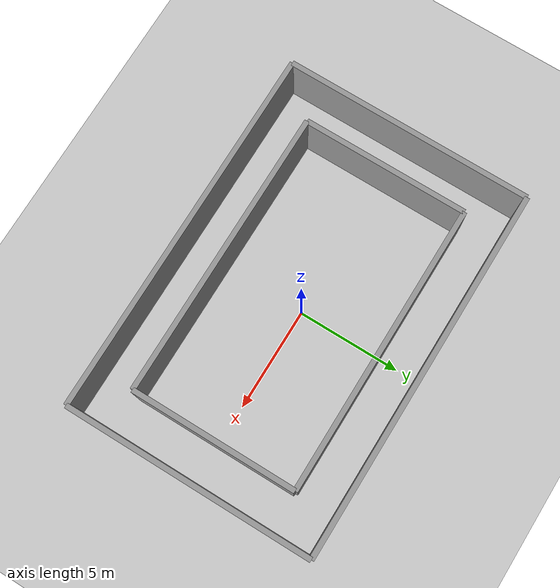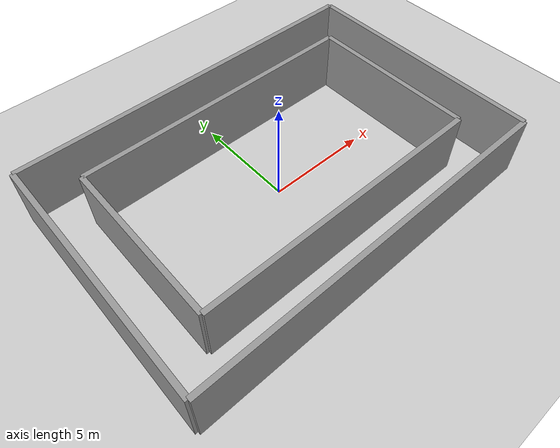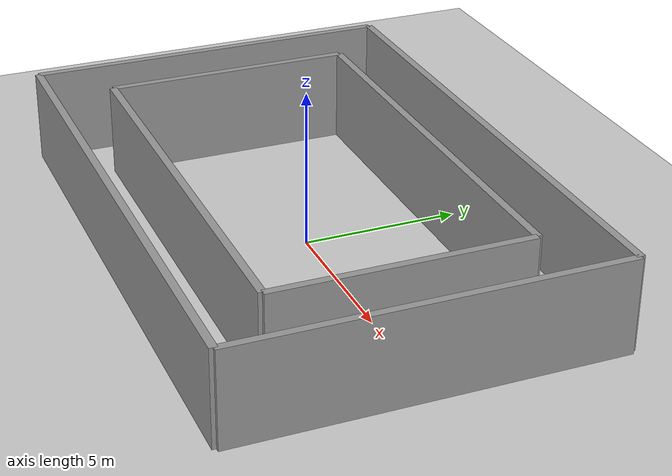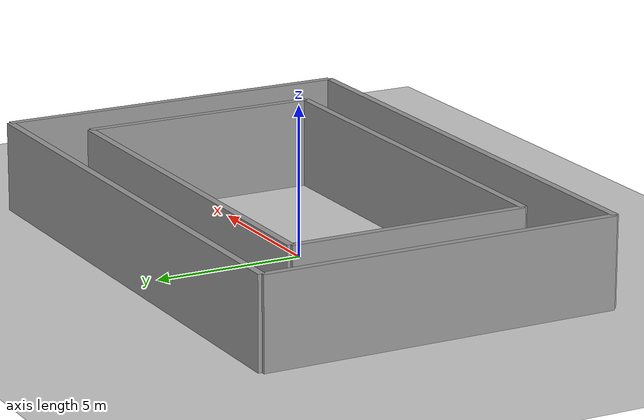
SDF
<?xml version="1.0"?>
<sdf version="1.6">
  <world name="corridor_world">

    <!-- ── Physics ─────────────────────────────────────────────────────── -->
    <physics type="ode">
      <max_step_size>0.001</max_step_size>
      <real_time_factor>1.0</real_time_factor>
      <real_time_update_rate>1000</real_time_update_rate>
    </physics>

    <!-- ── Sun directional light ───────────────────────────────────────── -->
    <light name="sun" type="directional">
      <cast_shadows>true</cast_shadows>
      <pose>0 0 10 0 0 0</pose>
      <diffuse>0.8 0.8 0.8 1</diffuse>
      <specular>0.2 0.2 0.2 1</specular>
      <direction>-0.5 0.1 -0.9</direction>
    </light>

    <!-- ── 6 overhead point lights evenly spaced around the loop ───────── -->
    <light name="light_1" type="point">
      <pose>7.0 0 2.8 0 0 0</pose>
      <diffuse>0.9 0.9 0.85 1</diffuse>
      <specular>0.1 0.1 0.1 1</specular>
      <attenuation>
        <range>15</range>
        <constant>0.3</constant>
        <linear>0.05</linear>
        <quadratic>0.01</quadratic>
      </attenuation>
    </light>

    <light name="light_2" type="point">
      <pose>-7.0 0 2.8 0 0 0</pose>
      <diffuse>0.9 0.9 0.85 1</diffuse>
      <specular>0.1 0.1 0.1 1</specular>
      <attenuation>
        <range>15</range>
        <constant>0.3</constant>
        <linear>0.05</linear>
        <quadratic>0.01</quadratic>
      </attenuation>
    </light>

    <light name="light_3" type="point">
      <pose>0 4.0 2.8 0 0 0</pose>
      <diffuse>0.9 0.9 0.85 1</diffuse>
      <specular>0.1 0.1 0.1 1</specular>
      <attenuation>
        <range>15</range>
        <constant>0.3</constant>
        <linear>0.05</linear>
        <quadratic>0.01</quadratic>
      </attenuation>
    </light>

    <light name="light_4" type="point">
      <pose>0 -4.0 2.8 0 0 0</pose>
      <diffuse>0.9 0.9 0.85 1</diffuse>
      <specular>0.1 0.1 0.1 1</specular>
      <attenuation>
        <range>15</range>
        <constant>0.3</constant>
        <linear>0.05</linear>
        <quadratic>0.01</quadratic>
      </attenuation>
    </light>

    <light name="light_5" type="point">
      <pose>5.0 4.0 2.8 0 0 0</pose>
      <diffuse>0.9 0.9 0.85 1</diffuse>
      <specular>0.1 0.1 0.1 1</specular>
      <attenuation>
        <range>15</range>
        <constant>0.3</constant>
        <linear>0.05</linear>
        <quadratic>0.01</quadratic>
      </attenuation>
    </light>

    <light name="light_6" type="point">
      <pose>-5.0 -4.0 2.8 0 0 0</pose>
      <diffuse>0.9 0.9 0.85 1</diffuse>
      <specular>0.1 0.1 0.1 1</specular>
      <attenuation>
        <range>15</range>
        <constant>0.3</constant>
        <linear>0.05</linear>
        <quadratic>0.01</quadratic>
      </attenuation>
    </light>

    <!-- ── Ground plane ────────────────────────────────────────────────── -->
    <model name="ground_plane">
      <static>true</static>
      <link name="ground_link">
        <collision name="ground_collision">
          <geometry>
            <plane>
              <normal>0 0 1</normal>
              <size>30 20</size>
            </plane>
          </geometry>
          <surface>
            <friction>
              <ode>
                <mu>1.0</mu>
                <mu2>1.0</mu2>
              </ode>
            </friction>
          </surface>
        </collision>
        <visual name="ground_visual">
          <geometry>
            <plane>
              <normal>0 0 1</normal>
              <size>30 20</size>
            </plane>
          </geometry>
          <material>
            <ambient>0.8 0.8 0.8 1</ambient>
            <diffuse>0.8 0.8 0.8 1</diffuse>
          </material>
        </visual>
      </link>
    </model>

    <model name="corridor">
      <static>true</static>

      <!-- ── Outer walls ─────────────────────────────────────────────── -->
      <!-- Outer North wall: y = +6, from x=-9 to x=9 -->
      <link name="outer_north">
        <pose>0 6.0 1.5 0 0 0</pose>
        <collision name="col">
          <geometry><box><size>18.0 0.25 3.0</size></box></geometry>
        </collision>
        <visual name="vis">
          <geometry><box><size>18.0 0.25 3.0</size></box></geometry>
          <material>
            <ambient>0.6 0.6 0.6 1</ambient>
            <diffuse>0.6 0.6 0.6 1</diffuse>
          </material>
        </visual>
      </link>

      <!-- Outer South wall: y = -6 -->
      <link name="outer_south">
        <pose>0 -6.0 1.5 0 0 0</pose>
        <collision name="col">
          <geometry><box><size>18.0 0.25 3.0</size></box></geometry>
        </collision>
        <visual name="vis">
          <geometry><box><size>18.0 0.25 3.0</size></box></geometry>
          <material>
            <ambient>0.6 0.6 0.6 1</ambient>
            <diffuse>0.6 0.6 0.6 1</diffuse>
          </material>
        </visual>
      </link>

      <!-- Outer East wall: x = +9, from y=-6 to y=6 -->
      <link name="outer_east">
        <pose>9.0 0 1.5 0 0 0</pose>
        <collision name="col">
          <geometry><box><size>0.25 12.0 3.0</size></box></geometry>
        </collision>
        <visual name="vis">
          <geometry><box><size>0.25 12.0 3.0</size></box></geometry>
          <material>
            <ambient>0.6 0.6 0.6 1</ambient>
            <diffuse>0.6 0.6 0.6 1</diffuse>
          </material>
        </visual>
      </link>

      <!-- Outer West wall: x = -9 -->
      <link name="outer_west">
        <pose>-9.0 0 1.5 0 0 0</pose>
        <collision name="col">
          <geometry><box><size>0.25 12.0 3.0</size></box></geometry>
        </collision>
        <visual name="vis">
          <geometry><box><size>0.25 12.0 3.0</size></box></geometry>
          <material>
            <ambient>0.6 0.6 0.6 1</ambient>
            <diffuse>0.6 0.6 0.6 1</diffuse>
          </material>
        </visual>
      </link>

      <!-- ── Inner walls ─────────────────────────────────────────────── -->
      <!-- Inner North wall: y = +4, from x=-7 to x=7 -->
      <link name="inner_north">
        <pose>0 4.0 1.5 0 0 0</pose>
        <collision name="col">
          <geometry><box><size>14.0 0.25 3.0</size></box></geometry>
        </collision>
        <visual name="vis">
          <geometry><box><size>14.0 0.25 3.0</size></box></geometry>
          <material>
            <ambient>0.6 0.6 0.6 1</ambient>
            <diffuse>0.6 0.6 0.6 1</diffuse>
          </material>
        </visual>
      </link>

      <!-- Inner South wall: y = -4 -->
      <link name="inner_south">
        <pose>0 -4.0 1.5 0 0 0</pose>
        <collision name="col">
          <geometry><box><size>14.0 0.25 3.0</size></box></geometry>
        </collision>
        <visual name="vis">
          <geometry><box><size>14.0 0.25 3.0</size></box></geometry>
          <material>
            <ambient>0.6 0.6 0.6 1</ambient>
            <diffuse>0.6 0.6 0.6 1</diffuse>
          </material>
        </visual>
      </link>

      <!-- Inner East wall: x = +7 -->
      <link name="inner_east">
        <pose>7.0 0 1.5 0 0 0</pose>
        <collision name="col">
          <geometry><box><size>0.25 8.0 3.0</size></box></geometry>
        </collision>
        <visual name="vis">
          <geometry><box><size>0.25 8.0 3.0</size></box></geometry>
          <material>
            <ambient>0.6 0.6 0.6 1</ambient>
            <diffuse>0.6 0.6 0.6 1</diffuse>
          </material>
        </visual>
      </link>

      <!-- Inner West wall: x = -7 -->
      <link name="inner_west">
        <pose>-7.0 0 1.5 0 0 0</pose>
        <collision name="col">
          <geometry><box><size>0.25 8.0 3.0</size></box></geometry>
        </collision>
        <visual name="vis">
          <geometry><box><size>0.25 8.0 3.0</size></box></geometry>
          <material>
            <ambient>0.6 0.6 0.6 1</ambient>
            <diffuse>0.6 0.6 0.6 1</diffuse>
          </material>
        </visual>
      </link>

    </model>

  </world>
</sdf>
